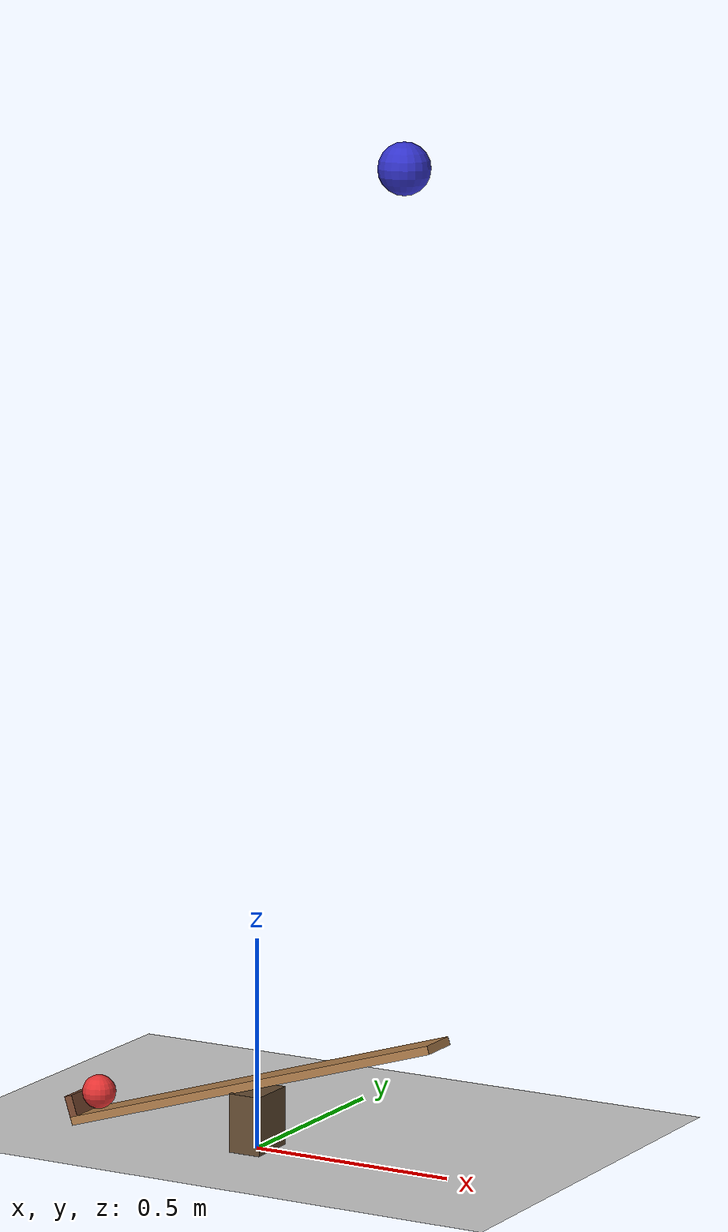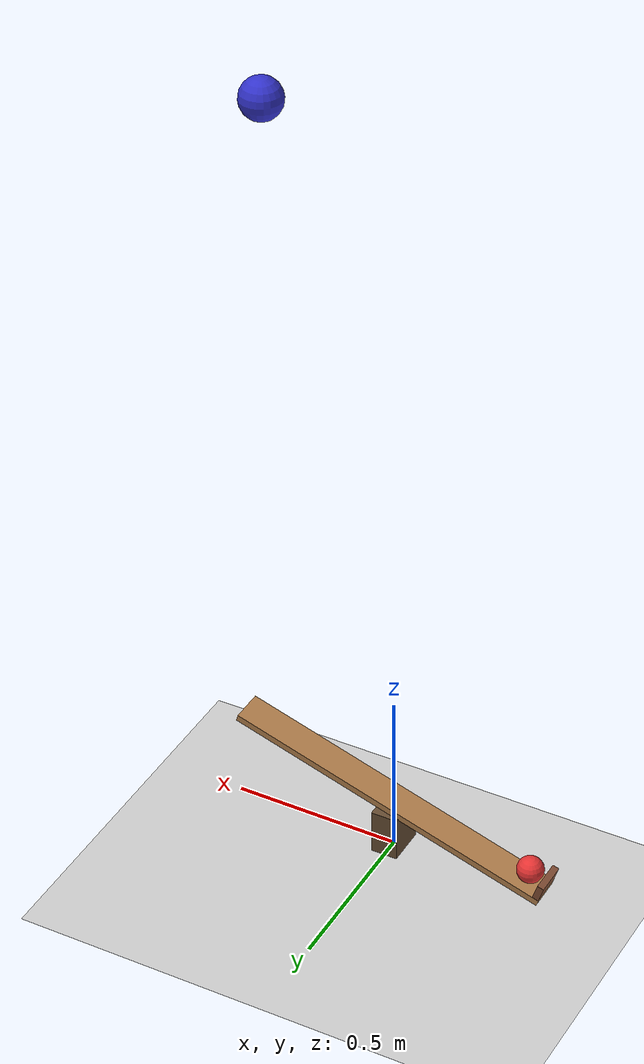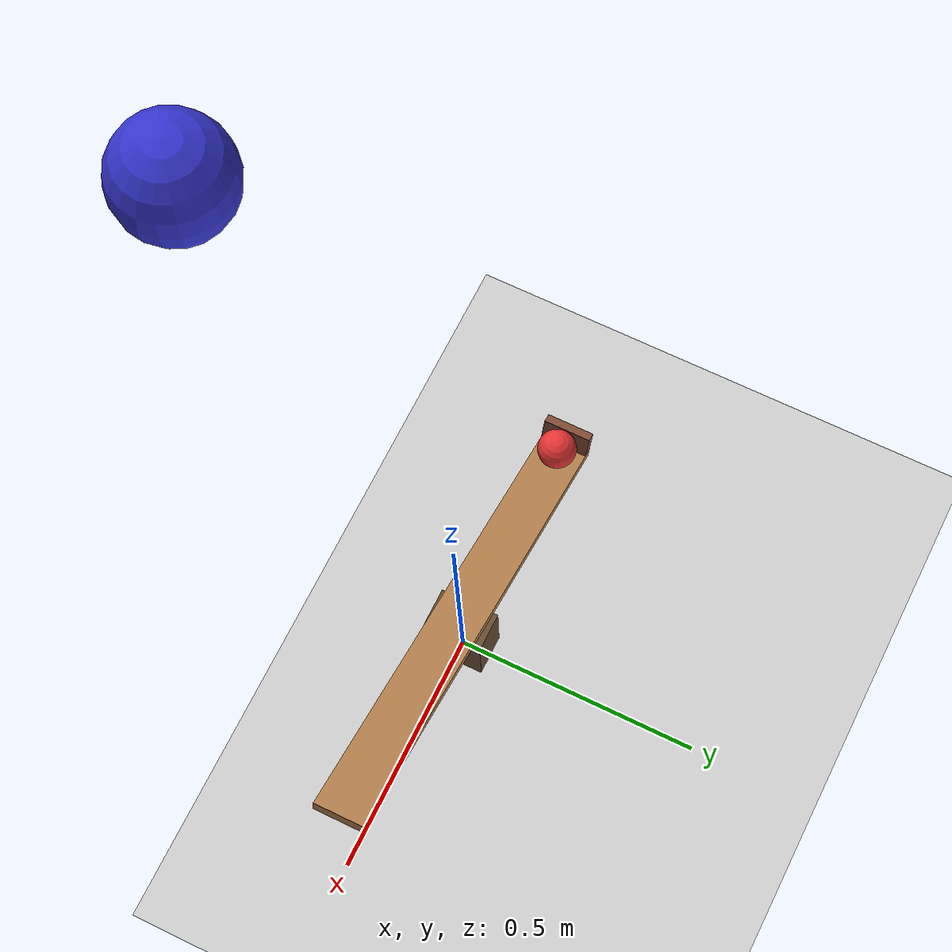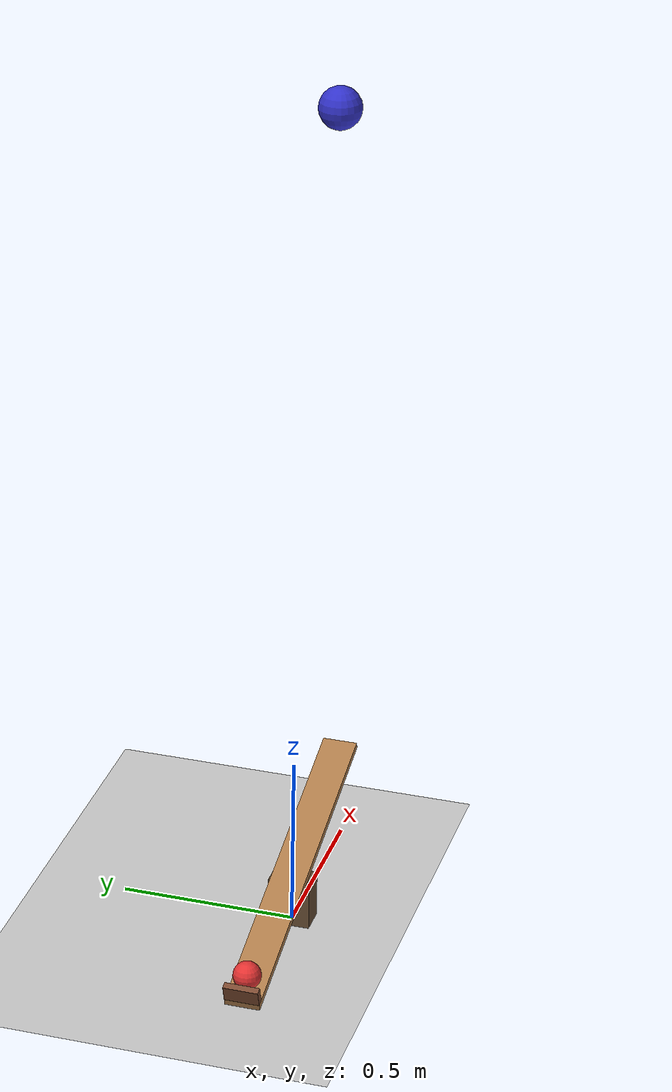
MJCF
<mujoco model="seesaw_launcher">
  <option timestep="0.002" gravity="0 0 -9.81" integrator="implicitfast"/>

  <worldbody>
    <light name="sun" pos="0 0 3" dir="0 0 -1" directional="true"/>
    <geom name="floor" type="plane" size="5 5 0.1" rgba="0.8 0.8 0.8 1"/>

    <!-- fulcrum support (visual only) -->
    <body name="fulcrum" pos="0 0 0">
      <geom name="fulcrum" type="box" size="0.04 0.06 0.07" pos="0 0 0.07" contype="0" conaffinity="0" rgba="0.4 0.3 0.2 1"/>
    </body>

    <!-- seesaw: pivot at z=0.16, tilted so the +x end is up and the -x end rests on the floor -->
    <body name="seesaw" pos="0 0 0.16" euler="0 -17.5 0">
      <joint name="pivot" type="hinge" axis="0 1 0" pos="0 0 0" damping="0"/>
      <geom name="plank" type="box" size="0.5 0.05 0.01" mass="0.3" rgba="0.7 0.5 0.3 1"/>
      <geom name="lip" type="box" size="0.01 0.05 0.025" pos="-0.49 0 0.035" mass="0.01" rgba="0.5 0.3 0.2 1"/>
    </body>

    <!-- 1 kg weight dropped from rest above the raised end -->
    <body name="weight" pos="0.3785 0 2.3">
      <freejoint name="weight_free"/>
      <geom name="weight" type="sphere" size="0.06" mass="1" rgba="0.2 0.2 0.8 1"/>
    </body>

    <!-- 100 g ball resting on the lowered end against the lip -->
    <body name="ball" pos="-0.4299 0 0.0769">
      <freejoint name="ball_free"/>
      <geom name="ball" type="sphere" size="0.04" mass="0.1" rgba="0.9 0.2 0.2 1"/>
    </body>
  </worldbody>

  <keyframe>
    <key name="start" qpos="0  0.3785 0 2.3 1 0 0 0  -0.4299 0 0.0769 1 0 0 0" qvel="0  0 0 0 0 0 0  0 0 0 0 0 0"/>
  </keyframe>
</mujoco>
